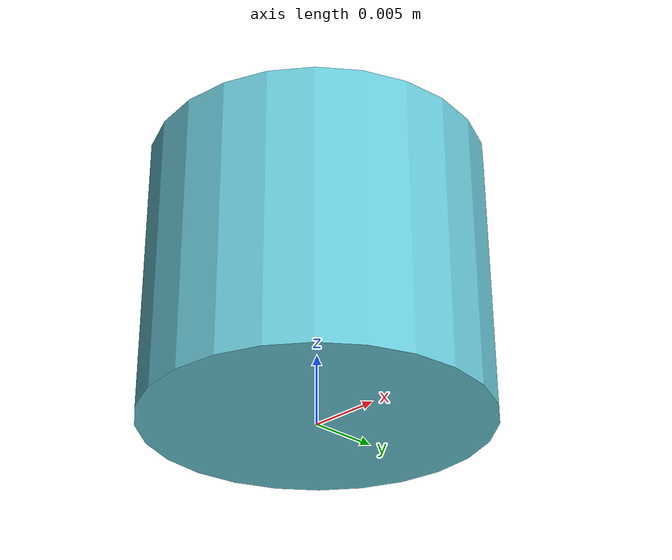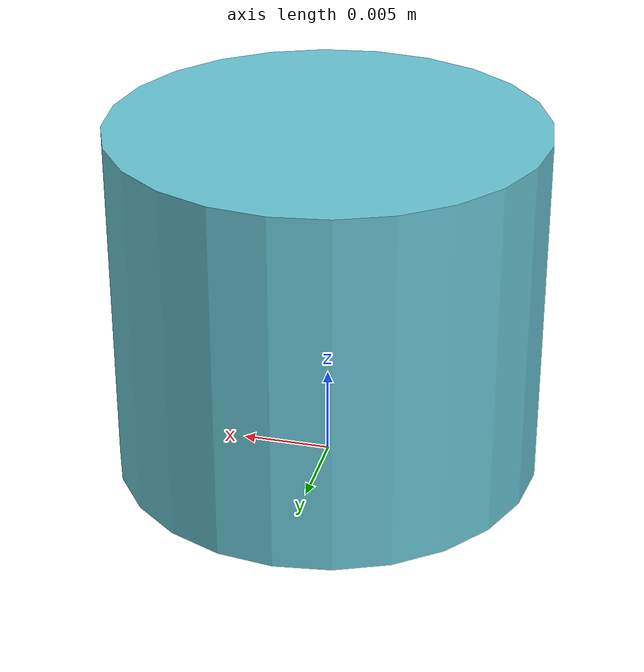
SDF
<sdf version="1.7">
  <model name="disc_12">
    <link name="base_link">
      <inertial>
        <mass>0.05</mass>
        <inertia>
          <ixx>7.91e-06</ixx>
          <ixy>0</ixy>
          <ixz>0</ixz>
          <iyy>7.91e-06</iyy>
          <iyz>0</iyz>
          <izz>1.56e-05</izz>
        </inertia>
        <pose>0 0 0.0025 0 0 0</pose>
      </inertial>
      <pose>0 0 0 0 0 0</pose>
      <visual name="visual">
        <pose>0 0 0.01 0 0 0</pose>
        <geometry>
            <cylinder>
              <radius>0.012</radius>
              <length>0.02</length>
            </cylinder>
        </geometry>
        <material>
          <diffuse>0.4075287808663377 0.7796883383422962 0.8384113249463484 1</diffuse>
        </material>
      </visual>
      <collision name="collision">
        <pose>0 0 0.01 0 0 0</pose>
        <geometry>
            <cylinder>
              <radius>0.012</radius>
              <length>0.02</length>
            </cylinder>
        </geometry>
      </collision>
      <collision name="ball1">
        <pose>0.00848528137423857 0.00848528137423857 0 0 0 0</pose>
        <geometry>
          <sphere>
            <radius>1e-07</radius>
          </sphere>
        </geometry>
      </collision>
      <collision name="ball2">
        <pose>-0.00848528137423857 0.00848528137423857 0 0 0 0</pose>
        <geometry>
          <sphere>
            <radius>1e-07</radius>
          </sphere>
        </geometry>
      </collision>
      <collision name="ball3">
        <pose>0.00848528137423857 -0.00848528137423857 0 0 0 0</pose>
        <geometry>
          <sphere>
            <radius>1e-07</radius>
          </sphere>
        </geometry>
      </collision>
      <collision name="ball4">
        <pose>-0.00848528137423857 -0.00848528137423857 0 0 0 0</pose>
        <geometry>
          <sphere>
            <radius>1e-07</radius>
          </sphere>
        </geometry>
      </collision>
    </link>
  </model>
</sdf>
